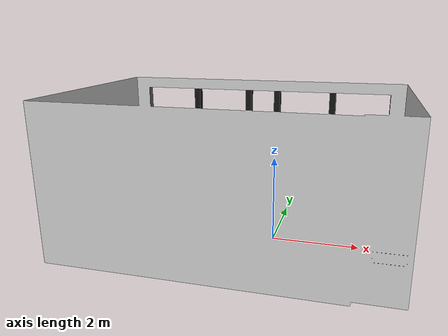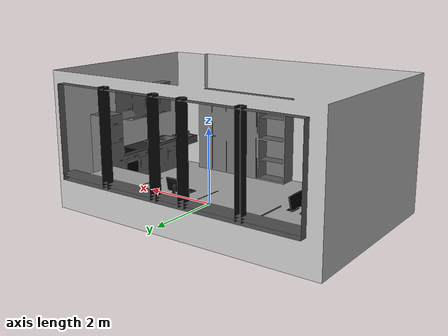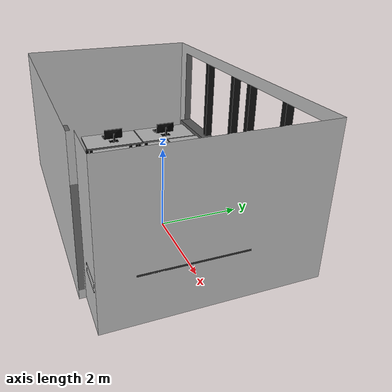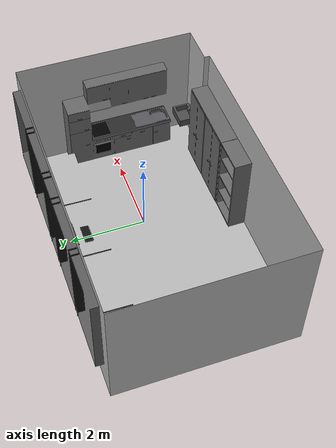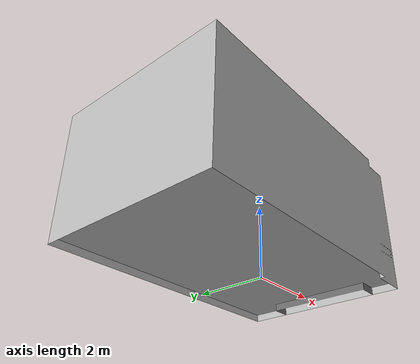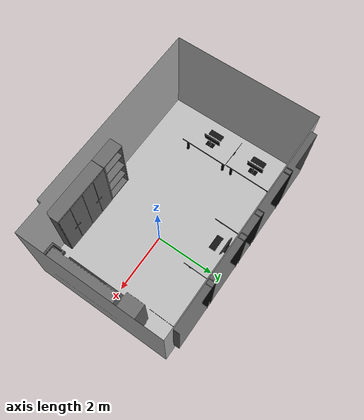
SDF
<?xml version="1.0" ?>
<sdf version="1.5">
  <model name="Garching kitchen">

    <pose>0 0 0  0 0 0</pose>

    <static>true</static>
    <link name="link">

      <visual name="visual">
        <geometry>
          <mesh>
            <uri>model://garching_kitchen/meshes/garching_kitchen.dae</uri>
          </mesh>
        </geometry>
      </visual>
    </link>
  </model>
</sdf>
